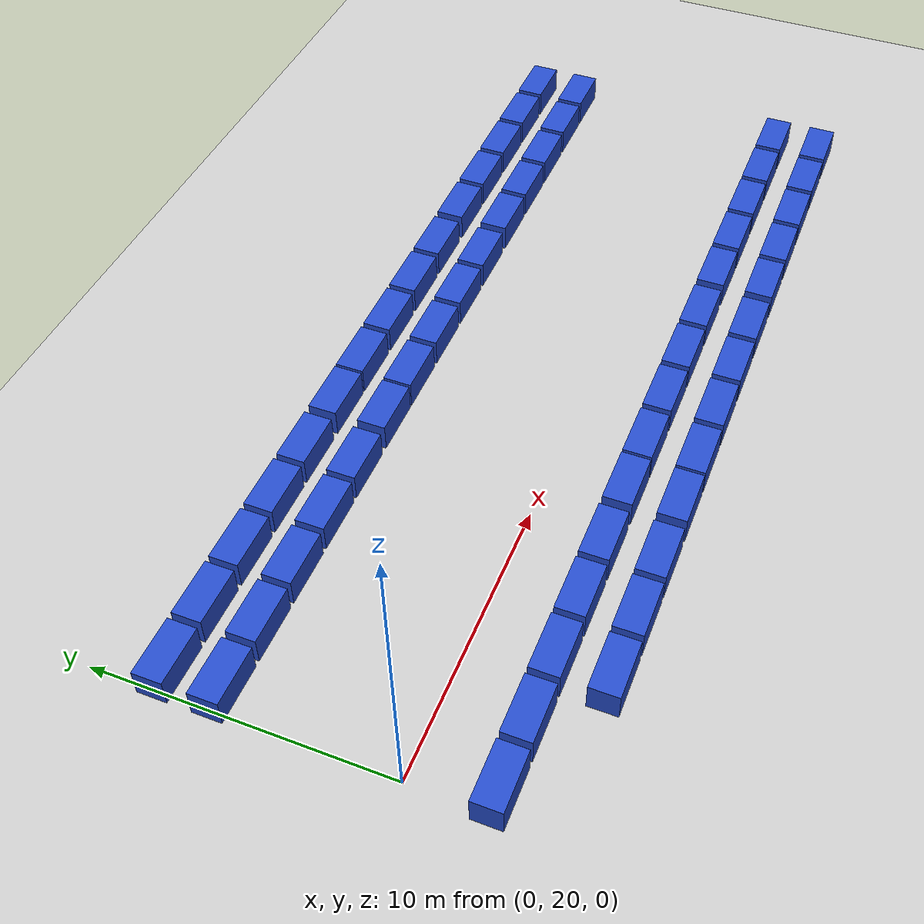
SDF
<sdf version="1.6">
 <world name="default">
  <model name="ground_plane">
   <static>1</static>
   <link name="link">
    <collision name="collision">
     <geometry><plane><normal>0 0 1</normal><size>100 100</size></plane></geometry>
     <surface><friction><ode><mu>100</mu><mu2>50</mu2></ode></friction></surface>
    </collision>
    <visual name="visual">
     <cast_shadows>0</cast_shadows>
     <geometry><plane><normal>0 0 1</normal><size>100 100</size></plane></geometry>
     <material>
      <script><uri>file://media/materials/scripts/gazebo.material</uri><name>Gazebo/Grey</name></script>
     </material>
    </visual>
   </link>
  </model>
  <model name="box14">
   <link name="blue_box">
    <inertial>
     <pose>2 0 0 0 -0 0</pose>
     <mass>1</mass>
     <inertia><ixx>0.17</ixx><ixy>0</ixy><ixz>0</ixz><iyy>0.42</iyy><iyz>0</iyz><izz>0.42</izz></inertia>
    </inertial>
    <collision name="blue_box_collision">
     <pose>2 0 1 0 -0 0</pose>
     <geometry><box><size>2 1 1</size></box></geometry>
    </collision>
    <visual name="blue_box_visual">
     <pose>2 0 1 0 -0 0</pose>
     <geometry><box><size>2 1 1</size></box></geometry>
     <material>
      <script><name>Gazebo/Blue</name><uri>file://media/materials/scripts/gazebo.material</uri></script>
     </material>
    </visual>
    <gravity>0</gravity>
   </link>
   <pose>-1.20001 27.7996 -0.500378 -0.000755 0 0</pose>
  </model>
  <model name="box15">
   <link name="blue_box">
    <inertial>
     <pose>2 0 0 0 -0 0</pose>
     <mass>1</mass>
     <inertia><ixx>0.17</ixx><ixy>0</ixy><ixz>0</ixz><iyy>0.42</iyy><iyz>0</iyz><izz>0.42</izz></inertia>
    </inertial>
    <collision name="blue_box_collision">
     <pose>2 0 1 0 -0 0</pose>
     <geometry><box><size>2 1 1</size></box></geometry>
    </collision>
    <visual name="blue_box_visual">
     <pose>2 0 1 0 -0 0</pose>
     <geometry><box><size>2 1 1</size></box></geometry>
     <material>
      <script><name>Gazebo/Blue</name><uri>file://media/materials/scripts/gazebo.material</uri></script>
     </material>
    </visual>
    <gravity>0</gravity>
   </link>
   <pose>1.00001 27.7996 -0.500378 -0.000755 0 0</pose>
  </model>
  <model name="box16">
   <link name="blue_box">
    <inertial>
     <pose>2 0 0 0 -0 0</pose>
     <mass>1</mass>
     <inertia><ixx>0.17</ixx><ixy>0</ixy><ixz>0</ixz><iyy>0.42</iyy><iyz>0</iyz><izz>0.42</izz></inertia>
    </inertial>
    <collision name="blue_box_collision">
     <pose>2 0 1 0 -0 0</pose>
     <geometry><box><size>2 1 1</size></box></geometry>
    </collision>
    <visual name="blue_box_visual">
     <pose>2 0 1 0 -0 0</pose>
     <geometry><box><size>2 1 1</size></box></geometry>
     <material>
      <script><name>Gazebo/Blue</name><uri>file://media/materials/scripts/gazebo.material</uri></script>
     </material>
    </visual>
    <gravity>0</gravity>
   </link>
   <pose>3.19999 27.7996 -0.500378 -0.000755 0 0</pose>
  </model>
  <model name="box17">
   <link name="blue_box">
    <inertial>
     <pose>2 0 0 0 -0 0</pose>
     <mass>1</mass>
     <inertia><ixx>0.17</ixx><ixy>0</ixy><ixz>0</ixz><iyy>0.42</iyy><iyz>0</iyz><izz>0.42</izz></inertia>
    </inertial>
    <collision name="blue_box_collision">
     <pose>2 0 1 0 -0 0</pose>
     <geometry><box><size>2 1 1</size></box></geometry>
    </collision>
    <visual name="blue_box_visual">
     <pose>2 0 1 0 -0 0</pose>
     <geometry><box><size>2 1 1</size></box></geometry>
     <material>
      <script><name>Gazebo/Blue</name><uri>file://media/materials/scripts/gazebo.material</uri></script>
     </material>
    </visual>
    <gravity>0</gravity>
   </link>
   <pose>5.40001 27.7996 -0.500378 -0.000755 0 0</pose>
  </model>
  <model name="box18">
   <link name="blue_box">
    <inertial>
     <pose>2 0 0 0 -0 0</pose>
     <mass>1</mass>
     <inertia><ixx>0.17</ixx><ixy>0</ixy><ixz>0</ixz><iyy>0.42</iyy><iyz>0</iyz><izz>0.42</izz></inertia>
    </inertial>
    <collision name="blue_box_collision">
     <pose>2 0 1 0 -0 0</pose>
     <geometry><box><size>2 1 1</size></box></geometry>
    </collision>
    <visual name="blue_box_visual">
     <pose>2 0 1 0 -0 0</pose>
     <geometry><box><size>2 1 1</size></box></geometry>
     <material>
      <script><name>Gazebo/Blue</name><uri>file://media/materials/scripts/gazebo.material</uri></script>
     </material>
    </visual>
    <gravity>0</gravity>
   </link>
   <pose>7.59999 27.7996 -0.500378 -0.000755 0 0</pose>
  </model>
  <model name="box19">
   <link name="blue_box">
    <inertial>
     <pose>2 0 0 0 -0 0</pose>
     <mass>1</mass>
     <inertia><ixx>0.17</ixx><ixy>0</ixy><ixz>0</ixz><iyy>0.42</iyy><iyz>0</iyz><izz>0.42</izz></inertia>
    </inertial>
    <collision name="blue_box_collision">
     <pose>2 0 1 0 -0 0</pose>
     <geometry><box><size>2 1 1</size></box></geometry>
    </collision>
    <visual name="blue_box_visual">
     <pose>2 0 1 0 -0 0</pose>
     <geometry><box><size>2 1 1</size></box></geometry>
     <material>
      <script><name>Gazebo/Blue</name><uri>file://media/materials/scripts/gazebo.material</uri></script>
     </material>
    </visual>
    <gravity>0</gravity>
   </link>
   <pose>9.89999 27.7996 -0.500378 -0.000755 0 0</pose>
  </model>
  <model name="box20">
   <link name="blue_box">
    <inertial>
     <pose>2 0 0 0 -0 0</pose>
     <mass>1</mass>
     <inertia><ixx>0.17</ixx><ixy>0</ixy><ixz>0</ixz><iyy>0.42</iyy><iyz>0</iyz><izz>0.42</izz></inertia>
    </inertial>
    <collision name="blue_box_collision">
     <pose>2 0 1 0 -0 0</pose>
     <geometry><box><size>2 1 1</size></box></geometry>
    </collision>
    <visual name="blue_box_visual">
     <pose>2 0 1 0 -0 0</pose>
     <geometry><box><size>2 1 1</size></box></geometry>
     <material>
      <script><name>Gazebo/Blue</name><uri>file://media/materials/scripts/gazebo.material</uri></script>
     </material>
    </visual>
    <gravity>0</gravity>
   </link>
   <pose>12 27.7996 -0.500378 -0.000755 0 0</pose>
  </model>
  <model name="box21">
   <link name="blue_box">
    <inertial>
     <pose>2 0 0 0 -0 0</pose>
     <mass>1</mass>
     <inertia><ixx>0.17</ixx><ixy>0</ixy><ixz>0</ixz><iyy>0.42</iyy><iyz>0</iyz><izz>0.42</izz></inertia>
    </inertial>
    <collision name="blue_box_collision">
     <pose>2 0 1 0 -0 0</pose>
     <geometry><box><size>2 1 1</size></box></geometry>
    </collision>
    <visual name="blue_box_visual">
     <pose>2 0 1 0 -0 0</pose>
     <geometry><box><size>2 1 1</size></box></geometry>
     <material>
      <script><name>Gazebo/Blue</name><uri>file://media/materials/scripts/gazebo.material</uri></script>
     </material>
    </visual>
    <gravity>0</gravity>
   </link>
   <pose>14.2 27.8004 -0.500378 0.000755 -0 0</pose>
  </model>
  <model name="box22">
   <link name="blue_box">
    <inertial>
     <pose>2 0 0 0 -0 0</pose>
     <mass>1</mass>
     <inertia><ixx>0.17</ixx><ixy>0</ixy><ixz>0</ixz><iyy>0.42</iyy><iyz>0</iyz><izz>0.42</izz></inertia>
    </inertial>
    <collision name="blue_box_collision">
     <pose>2 0 1 0 -0 0</pose>
     <geometry><box><size>2 1 1</size></box></geometry>
    </collision>
    <visual name="blue_box_visual">
     <pose>2 0 1 0 -0 0</pose>
     <geometry><box><size>2 1 1</size></box></geometry>
     <material>
      <script><name>Gazebo/Blue</name><uri>file://media/materials/scripts/gazebo.material</uri></script>
     </material>
    </visual>
    <gravity>0</gravity>
   </link>
   <pose>16.4 27.7996 -0.500378 -0.000755 0 0</pose>
  </model>
  <model name="box23">
   <link name="blue_box">
    <inertial>
     <pose>2 0 0 0 -0 0</pose>
     <mass>1</mass>
     <inertia><ixx>0.17</ixx><ixy>0</ixy><ixz>0</ixz><iyy>0.42</iyy><iyz>0</iyz><izz>0.42</izz></inertia>
    </inertial>
    <collision name="blue_box_collision">
     <pose>2 0 1 0 -0 0</pose>
     <geometry><box><size>2 1 1</size></box></geometry>
    </collision>
    <visual name="blue_box_visual">
     <pose>2 0 1 0 -0 0</pose>
     <geometry><box><size>2 1 1</size></box></geometry>
     <material>
      <script><name>Gazebo/Blue</name><uri>file://media/materials/scripts/gazebo.material</uri></script>
     </material>
    </visual>
    <gravity>0</gravity>
   </link>
   <pose>18.6 27.7996 -0.500378 -0.000755 0 0</pose>
  </model>
  <model name="box24">
   <link name="blue_box">
    <inertial>
     <pose>2 0 0 0 -0 0</pose>
     <mass>1</mass>
     <inertia><ixx>0.17</ixx><ixy>0</ixy><ixz>0</ixz><iyy>0.42</iyy><iyz>0</iyz><izz>0.42</izz></inertia>
    </inertial>
    <collision name="blue_box_collision">
     <pose>2 0 1 0 -0 0</pose>
     <geometry><box><size>2 1 1</size></box></geometry>
    </collision>
    <visual name="blue_box_visual">
     <pose>2 0 1 0 -0 0</pose>
     <geometry><box><size>2 1 1</size></box></geometry>
     <material>
      <script><name>Gazebo/Blue</name><uri>file://media/materials/scripts/gazebo.material</uri></script>
     </material>
    </visual>
    <gravity>0</gravity>
   </link>
   <pose>20.9 27.7996 -0.500378 -0.000755 0 0</pose>
  </model>
  <model name="box25">
   <link name="blue_box">
    <inertial>
     <pose>2 0 0 0 -0 0</pose>
     <mass>1</mass>
     <inertia><ixx>0.17</ixx><ixy>0</ixy><ixz>0</ixz><iyy>0.42</iyy><iyz>0</iyz><izz>0.42</izz></inertia>
    </inertial>
    <collision name="blue_box_collision">
     <pose>2 0 1 0 -0 0</pose>
     <geometry><box><size>2 1 1</size></box></geometry>
    </collision>
    <visual name="blue_box_visual">
     <pose>2 0 1 0 -0 0</pose>
     <geometry><box><size>2 1 1</size></box></geometry>
     <material>
      <script><name>Gazebo/Blue</name><uri>file://media/materials/scripts/gazebo.material</uri></script>
     </material>
    </visual>
    <gravity>0</gravity>
   </link>
   <pose>23.1 27.7996 -0.500378 -0.000755 0 0</pose>
  </model>
  <model name="box26">
   <link name="blue_box">
    <inertial>
     <pose>2 0 0 0 -0 0</pose>
     <mass>1</mass>
     <inertia><ixx>0.17</ixx><ixy>0</ixy><ixz>0</ixz><iyy>0.42</iyy><iyz>0</iyz><izz>0.42</izz></inertia>
    </inertial>
    <collision name="blue_box_collision">
     <pose>2 0 1 0 -0 0</pose>
     <geometry><box><size>2 1 1</size></box></geometry>
    </collision>
    <visual name="blue_box_visual">
     <pose>2 0 1 0 -0 0</pose>
     <geometry><box><size>2 1 1</size></box></geometry>
     <material>
      <script><name>Gazebo/Blue</name><uri>file://media/materials/scripts/gazebo.material</uri></script>
     </material>
    </visual>
    <gravity>0</gravity>
   </link>
   <pose>25.3 27.7996 -0.500378 -0.000755 0 0</pose>
  </model>
  <model name="box27">
   <link name="blue_box">
    <inertial>
     <pose>2 0 0 0 -0 0</pose>
     <mass>1</mass>
     <inertia><ixx>0.17</ixx><ixy>0</ixy><ixz>0</ixz><iyy>0.42</iyy><iyz>0</iyz><izz>0.42</izz></inertia>
    </inertial>
    <collision name="blue_box_collision">
     <pose>2 0 1 0 -0 0</pose>
     <geometry><box><size>2 1 1</size></box></geometry>
    </collision>
    <visual name="blue_box_visual">
     <pose>2 0 1 0 -0 0</pose>
     <geometry><box><size>2 1 1</size></box></geometry>
     <material>
      <script><name>Gazebo/Blue</name><uri>file://media/materials/scripts/gazebo.material</uri></script>
     </material>
    </visual>
    <gravity>0</gravity>
   </link>
   <pose>27.5 27.7996 -0.500378 -0.000755 0 0</pose>
  </model>
  <model name="box28">
   <link name="blue_box">
    <inertial>
     <pose>2 0 0 0 -0 0</pose>
     <mass>1</mass>
     <inertia><ixx>0.17</ixx><ixy>0</ixy><ixz>0</ixz><iyy>0.42</iyy><iyz>0</iyz><izz>0.42</izz></inertia>
    </inertial>
    <collision name="blue_box_collision">
     <pose>2 0 1 0 -0 0</pose>
     <geometry><box><size>2 1 1</size></box></geometry>
    </collision>
    <visual name="blue_box_visual">
     <pose>2 0 1 0 -0 0</pose>
     <geometry><box><size>2 1 1</size></box></geometry>
     <material>
      <script><name>Gazebo/Blue</name><uri>file://media/materials/scripts/gazebo.material</uri></script>
     </material>
    </visual>
    <gravity>0</gravity>
   </link>
   <pose>29.7 27.7996 -0.500378 -0.000755 0 0</pose>
  </model>
  <model name="box43">
   <link name="blue_box">
    <inertial>
     <pose>2 0 0 0 -0 0</pose>
     <mass>1</mass>
     <inertia><ixx>0.17</ixx><ixy>0</ixy><ixz>0</ixz><iyy>0.42</iyy><iyz>0</iyz><izz>0.42</izz></inertia>
    </inertial>
    <collision name="blue_box_collision">
     <pose>2 0 1 0 -0 0</pose>
     <geometry><box><size>2 1 1</size></box></geometry>
    </collision>
    <visual name="blue_box_visual">
     <pose>2 0 1 0 -0 0</pose>
     <geometry><box><size>2 1 1</size></box></geometry>
     <material>
      <script><name>Gazebo/Blue</name><uri>file://media/materials/scripts/gazebo.material</uri></script>
     </material>
    </visual>
    <gravity>0</gravity>
   </link>
   <pose>-1.20001 26.0004 -0.500378 0.000755 -0 0</pose>
  </model>
  <model name="box44">
   <link name="blue_box">
    <inertial>
     <pose>2 0 0 0 -0 0</pose>
     <mass>1</mass>
     <inertia><ixx>0.17</ixx><ixy>0</ixy><ixz>0</ixz><iyy>0.42</iyy><iyz>0</iyz><izz>0.42</izz></inertia>
    </inertial>
    <collision name="blue_box_collision">
     <pose>2 0 1 0 -0 0</pose>
     <geometry><box><size>2 1 1</size></box></geometry>
    </collision>
    <visual name="blue_box_visual">
     <pose>2 0 1 0 -0 0</pose>
     <geometry><box><size>2 1 1</size></box></geometry>
     <material>
      <script><name>Gazebo/Blue</name><uri>file://media/materials/scripts/gazebo.material</uri></script>
     </material>
    </visual>
    <gravity>0</gravity>
   </link>
   <pose>0.999994 25.9996 -0.500378 -0.000755 0 0</pose>
  </model>
  <model name="box45">
   <link name="blue_box">
    <inertial>
     <pose>2 0 0 0 -0 0</pose>
     <mass>1</mass>
     <inertia><ixx>0.17</ixx><ixy>0</ixy><ixz>0</ixz><iyy>0.42</iyy><iyz>0</iyz><izz>0.42</izz></inertia>
    </inertial>
    <collision name="blue_box_collision">
     <pose>2 0 1 0 -0 0</pose>
     <geometry><box><size>2 1 1</size></box></geometry>
    </collision>
    <visual name="blue_box_visual">
     <pose>2 0 1 0 -0 0</pose>
     <geometry><box><size>2 1 1</size></box></geometry>
     <material>
      <script><name>Gazebo/Blue</name><uri>file://media/materials/scripts/gazebo.material</uri></script>
     </material>
    </visual>
    <gravity>0</gravity>
   </link>
   <pose>3.20001 25.9996 -0.500378 -0.000755 0 0</pose>
  </model>
  <model name="box46">
   <link name="blue_box">
    <inertial>
     <pose>2 0 0 0 -0 0</pose>
     <mass>1</mass>
     <inertia><ixx>0.17</ixx><ixy>0</ixy><ixz>0</ixz><iyy>0.42</iyy><iyz>0</iyz><izz>0.42</izz></inertia>
    </inertial>
    <collision name="blue_box_collision">
     <pose>2 0 1 0 -0 0</pose>
     <geometry><box><size>2 1 1</size></box></geometry>
    </collision>
    <visual name="blue_box_visual">
     <pose>2 0 1 0 -0 0</pose>
     <geometry><box><size>2 1 1</size></box></geometry>
     <material>
      <script><name>Gazebo/Blue</name><uri>file://media/materials/scripts/gazebo.material</uri></script>
     </material>
    </visual>
    <gravity>0</gravity>
   </link>
   <pose>5.40001 26.0004 -0.500378 0.000755 -0 0</pose>
  </model>
  <model name="box47">
   <link name="blue_box">
    <inertial>
     <pose>2 0 0 0 -0 0</pose>
     <mass>1</mass>
     <inertia><ixx>0.17</ixx><ixy>0</ixy><ixz>0</ixz><iyy>0.42</iyy><iyz>0</iyz><izz>0.42</izz></inertia>
    </inertial>
    <collision name="blue_box_collision">
     <pose>2 0 1 0 -0 0</pose>
     <geometry><box><size>2 1 1</size></box></geometry>
    </collision>
    <visual name="blue_box_visual">
     <pose>2 0 1 0 -0 0</pose>
     <geometry><box><size>2 1 1</size></box></geometry>
     <material>
      <script><name>Gazebo/Blue</name><uri>file://media/materials/scripts/gazebo.material</uri></script>
     </material>
    </visual>
    <gravity>0</gravity>
   </link>
   <pose>7.59999 26.0004 -0.500378 0.000755 -0 0</pose>
  </model>
  <model name="box48">
   <link name="blue_box">
    <inertial>
     <pose>2 0 0 0 -0 0</pose>
     <mass>1</mass>
     <inertia><ixx>0.17</ixx><ixy>0</ixy><ixz>0</ixz><iyy>0.42</iyy><iyz>0</iyz><izz>0.42</izz></inertia>
    </inertial>
    <collision name="blue_box_collision">
     <pose>2 0 1 0 -0 0</pose>
     <geometry><box><size>2 1 1</size></box></geometry>
    </collision>
    <visual name="blue_box_visual">
     <pose>2 0 1 0 -0 0</pose>
     <geometry><box><size>2 1 1</size></box></geometry>
     <material>
      <script><name>Gazebo/Blue</name><uri>file://media/materials/scripts/gazebo.material</uri></script>
     </material>
    </visual>
    <gravity>0</gravity>
   </link>
   <pose>9.9 25.9996 -0.500378 -0.000755 0 0</pose>
  </model>
  <model name="box49">
   <link name="blue_box">
    <inertial>
     <pose>2 0 0 0 -0 0</pose>
     <mass>1</mass>
     <inertia><ixx>0.17</ixx><ixy>0</ixy><ixz>0</ixz><iyy>0.42</iyy><iyz>0</iyz><izz>0.42</izz></inertia>
    </inertial>
    <collision name="blue_box_collision">
     <pose>2 0 1 0 -0 0</pose>
     <geometry><box><size>2 1 1</size></box></geometry>
    </collision>
    <visual name="blue_box_visual">
     <pose>2 0 1 0 -0 0</pose>
     <geometry><box><size>2 1 1</size></box></geometry>
     <material>
      <script><name>Gazebo/Blue</name><uri>file://media/materials/scripts/gazebo.material</uri></script>
     </material>
    </visual>
    <gravity>0</gravity>
   </link>
   <pose>12 25.9996 -0.500378 -0.000755 0 0</pose>
  </model>
  <model name="box50">
   <link name="blue_box">
    <inertial>
     <pose>2 0 0 0 -0 0</pose>
     <mass>1</mass>
     <inertia><ixx>0.17</ixx><ixy>0</ixy><ixz>0</ixz><iyy>0.42</iyy><iyz>0</iyz><izz>0.42</izz></inertia>
    </inertial>
    <collision name="blue_box_collision">
     <pose>2 0 1 0 -0 0</pose>
     <geometry><box><size>2 1 1</size></box></geometry>
    </collision>
    <visual name="blue_box_visual">
     <pose>2 0 1 0 -0 0</pose>
     <geometry><box><size>2 1 1</size></box></geometry>
     <material>
      <script><name>Gazebo/Blue</name><uri>file://media/materials/scripts/gazebo.material</uri></script>
     </material>
    </visual>
    <gravity>0</gravity>
   </link>
   <pose>14.2 25.9996 -0.500378 -0.000755 0 0</pose>
  </model>
  <model name="box51">
   <link name="blue_box">
    <inertial>
     <pose>2 0 0 0 -0 0</pose>
     <mass>1</mass>
     <inertia><ixx>0.17</ixx><ixy>0</ixy><ixz>0</ixz><iyy>0.42</iyy><iyz>0</iyz><izz>0.42</izz></inertia>
    </inertial>
    <collision name="blue_box_collision">
     <pose>2 0 1 0 -0 0</pose>
     <geometry><box><size>2 1 1</size></box></geometry>
    </collision>
    <visual name="blue_box_visual">
     <pose>2 0 1 0 -0 0</pose>
     <geometry><box><size>2 1 1</size></box></geometry>
     <material>
      <script><name>Gazebo/Blue</name><uri>file://media/materials/scripts/gazebo.material</uri></script>
     </material>
    </visual>
    <gravity>0</gravity>
   </link>
   <pose>16.4 26.0004 -0.500378 0.000755 -0 0</pose>
  </model>
  <model name="box52">
   <link name="blue_box">
    <inertial>
     <pose>2 0 0 0 -0 0</pose>
     <mass>1</mass>
     <inertia><ixx>0.17</ixx><ixy>0</ixy><ixz>0</ixz><iyy>0.42</iyy><iyz>0</iyz><izz>0.42</izz></inertia>
    </inertial>
    <collision name="blue_box_collision">
     <pose>2 0 1 0 -0 0</pose>
     <geometry><box><size>2 1 1</size></box></geometry>
    </collision>
    <visual name="blue_box_visual">
     <pose>2 0 1 0 -0 0</pose>
     <geometry><box><size>2 1 1</size></box></geometry>
     <material>
      <script><name>Gazebo/Blue</name><uri>file://media/materials/scripts/gazebo.material</uri></script>
     </material>
    </visual>
    <gravity>0</gravity>
   </link>
   <pose>18.6 26.0004 -0.500378 0.000755 -0 0</pose>
  </model>
  <model name="box53">
   <link name="blue_box">
    <inertial>
     <pose>2 0 0 0 -0 0</pose>
     <mass>1</mass>
     <inertia><ixx>0.17</ixx><ixy>0</ixy><ixz>0</ixz><iyy>0.42</iyy><iyz>0</iyz><izz>0.42</izz></inertia>
    </inertial>
    <collision name="blue_box_collision">
     <pose>2 0 1 0 -0 0</pose>
     <geometry><box><size>2 1 1</size></box></geometry>
    </collision>
    <visual name="blue_box_visual">
     <pose>2 0 1 0 -0 0</pose>
     <geometry><box><size>2 1 1</size></box></geometry>
     <material>
      <script><name>Gazebo/Blue</name><uri>file://media/materials/scripts/gazebo.material</uri></script>
     </material>
    </visual>
    <gravity>0</gravity>
   </link>
   <pose>20.9 25.9996 -0.500378 -0.000755 0 0</pose>
  </model>
  <model name="box54">
   <link name="blue_box">
    <inertial>
     <pose>2 0 0 0 -0 0</pose>
     <mass>1</mass>
     <inertia><ixx>0.17</ixx><ixy>0</ixy><ixz>0</ixz><iyy>0.42</iyy><iyz>0</iyz><izz>0.42</izz></inertia>
    </inertial>
    <collision name="blue_box_collision">
     <pose>2 0 1 0 -0 0</pose>
     <geometry><box><size>2 1 1</size></box></geometry>
    </collision>
    <visual name="blue_box_visual">
     <pose>2 0 1 0 -0 0</pose>
     <geometry><box><size>2 1 1</size></box></geometry>
     <material>
      <script><name>Gazebo/Blue</name><uri>file://media/materials/scripts/gazebo.material</uri></script>
     </material>
    </visual>
    <gravity>0</gravity>
   </link>
   <pose>23.1 25.9996 -0.500378 -0.000755 0 0</pose>
  </model>
  <model name="box55">
   <link name="blue_box">
    <inertial>
     <pose>2 0 0 0 -0 0</pose>
     <mass>1</mass>
     <inertia><ixx>0.17</ixx><ixy>0</ixy><ixz>0</ixz><iyy>0.42</iyy><iyz>0</iyz><izz>0.42</izz></inertia>
    </inertial>
    <collision name="blue_box_collision">
     <pose>2 0 1 0 -0 0</pose>
     <geometry><box><size>2 1 1</size></box></geometry>
    </collision>
    <visual name="blue_box_visual">
     <pose>2 0 1 0 -0 0</pose>
     <geometry><box><size>2 1 1</size></box></geometry>
     <material>
      <script><name>Gazebo/Blue</name><uri>file://media/materials/scripts/gazebo.material</uri></script>
     </material>
    </visual>
    <gravity>0</gravity>
   </link>
   <pose>25.3 26.0004 -0.500378 0.000755 -0 0</pose>
  </model>
  <model name="box56">
   <link name="blue_box">
    <inertial>
     <pose>2 0 0 0 -0 0</pose>
     <mass>1</mass>
     <inertia><ixx>0.17</ixx><ixy>0</ixy><ixz>0</ixz><iyy>0.42</iyy><iyz>0</iyz><izz>0.42</izz></inertia>
    </inertial>
    <collision name="blue_box_collision">
     <pose>2 0 1 0 -0 0</pose>
     <geometry><box><size>2 1 1</size></box></geometry>
    </collision>
    <visual name="blue_box_visual">
     <pose>2 0 1 0 -0 0</pose>
     <geometry><box><size>2 1 1</size></box></geometry>
     <material>
      <script><name>Gazebo/Blue</name><uri>file://media/materials/scripts/gazebo.material</uri></script>
     </material>
    </visual>
    <gravity>0</gravity>
   </link>
   <pose>27.5 26.0004 -0.500378 0.000755 -0 0</pose>
  </model>
  <model name="box57">
   <link name="blue_box">
    <inertial>
     <pose>2 0 0 0 -0 0</pose>
     <mass>1</mass>
     <inertia><ixx>0.17</ixx><ixy>0</ixy><ixz>0</ixz><iyy>0.42</iyy><iyz>0</iyz><izz>0.42</izz></inertia>
    </inertial>
    <collision name="blue_box_collision">
     <pose>2 0 1 0 -0 0</pose>
     <geometry><box><size>2 1 1</size></box></geometry>
    </collision>
    <visual name="blue_box_visual">
     <pose>2 0 1 0 -0 0</pose>
     <geometry><box><size>2 1 1</size></box></geometry>
     <material>
      <script><name>Gazebo/Blue</name><uri>file://media/materials/scripts/gazebo.material</uri></script>
     </material>
    </visual>
    <gravity>0</gravity>
   </link>
   <pose>29.7 26.0004 -0.500378 0.000755 -0 0</pose>
  </model>
  <model name="box72">
   <link name="blue_box">
    <inertial>
     <pose>2 0 0 0 -0 0</pose>
     <mass>1</mass>
     <inertia><ixx>0.17</ixx><ixy>0</ixy><ixz>0</ixz><iyy>0.42</iyy><iyz>0</iyz><izz>0.42</izz></inertia>
    </inertial>
    <collision name="blue_box_collision">
     <pose>2 0 1 0 -0 0</pose>
     <geometry><box><size>2 1 1</size></box></geometry>
    </collision>
    <visual name="blue_box_visual">
     <pose>2 0 1 0 -0 0</pose>
     <geometry><box><size>2 1 1</size></box></geometry>
     <material>
      <script><name>Gazebo/Blue</name><uri>file://media/materials/scripts/gazebo.material</uri></script>
     </material>
    </visual>
    <gravity>0</gravity>
   </link>
   <pose>-1.3 17.4004 -0.500378 0.000755 -0 0</pose>
  </model>
  <model name="box73">
   <link name="blue_box">
    <inertial>
     <pose>2 0 0 0 -0 0</pose>
     <mass>1</mass>
     <inertia><ixx>0.17</ixx><ixy>0</ixy><ixz>0</ixz><iyy>0.42</iyy><iyz>0</iyz><izz>0.42</izz></inertia>
    </inertial>
    <collision name="blue_box_collision">
     <pose>2 0 1 0 -0 0</pose>
     <geometry><box><size>2 1 1</size></box></geometry>
    </collision>
    <visual name="blue_box_visual">
     <pose>2 0 1 0 -0 0</pose>
     <geometry><box><size>2 1 1</size></box></geometry>
     <material>
      <script><name>Gazebo/Blue</name><uri>file://media/materials/scripts/gazebo.material</uri></script>
     </material>
    </visual>
    <gravity>0</gravity>
   </link>
   <pose>0.900005 17.3996 -0.500378 -0.000755 0 0</pose>
  </model>
  <model name="box74">
   <link name="blue_box">
    <inertial>
     <pose>2 0 0 0 -0 0</pose>
     <mass>1</mass>
     <inertia><ixx>0.17</ixx><ixy>0</ixy><ixz>0</ixz><iyy>0.42</iyy><iyz>0</iyz><izz>0.42</izz></inertia>
    </inertial>
    <collision name="blue_box_collision">
     <pose>2 0 1 0 -0 0</pose>
     <geometry><box><size>2 1 1</size></box></geometry>
    </collision>
    <visual name="blue_box_visual">
     <pose>2 0 1 0 -0 0</pose>
     <geometry><box><size>2 1 1</size></box></geometry>
     <material>
      <script><name>Gazebo/Blue</name><uri>file://media/materials/scripts/gazebo.material</uri></script>
     </material>
    </visual>
    <gravity>0</gravity>
   </link>
   <pose>3.1 17.3996 -0.500378 -0.000755 0 0</pose>
  </model>
  <model name="box75">
   <link name="blue_box">
    <inertial>
     <pose>2 0 0 0 -0 0</pose>
     <mass>1</mass>
     <inertia><ixx>0.17</ixx><ixy>0</ixy><ixz>0</ixz><iyy>0.42</iyy><iyz>0</iyz><izz>0.42</izz></inertia>
    </inertial>
    <collision name="blue_box_collision">
     <pose>2 0 1 0 -0 0</pose>
     <geometry><box><size>2 1 1</size></box></geometry>
    </collision>
    <visual name="blue_box_visual">
     <pose>2 0 1 0 -0 0</pose>
     <geometry><box><size>2 1 1</size></box></geometry>
     <material>
      <script><name>Gazebo/Blue</name><uri>file://media/materials/scripts/gazebo.material</uri></script>
     </material>
    </visual>
    <gravity>0</gravity>
   </link>
   <pose>5.3 17.4004 -0.500378 0.000755 -0 0</pose>
  </model>
  <model name="box76">
   <link name="blue_box">
    <inertial>
     <pose>2 0 0 0 -0 0</pose>
     <mass>1</mass>
     <inertia><ixx>0.17</ixx><ixy>0</ixy><ixz>0</ixz><iyy>0.42</iyy><iyz>0</iyz><izz>0.42</izz></inertia>
    </inertial>
    <collision name="blue_box_collision">
     <pose>2 0 1 0 -0 0</pose>
     <geometry><box><size>2 1 1</size></box></geometry>
    </collision>
    <visual name="blue_box_visual">
     <pose>2 0 1 0 -0 0</pose>
     <geometry><box><size>2 1 1</size></box></geometry>
     <material>
      <script><name>Gazebo/Blue</name><uri>file://media/materials/scripts/gazebo.material</uri></script>
     </material>
    </visual>
    <gravity>0</gravity>
   </link>
   <pose>7.5 17.4004 -0.500378 0.000755 -0 0</pose>
  </model>
  <model name="box77">
   <link name="blue_box">
    <inertial>
     <pose>2 0 0 0 -0 0</pose>
     <mass>1</mass>
     <inertia><ixx>0.17</ixx><ixy>0</ixy><ixz>0</ixz><iyy>0.42</iyy><iyz>0</iyz><izz>0.42</izz></inertia>
    </inertial>
    <collision name="blue_box_collision">
     <pose>2 0 1 0 -0 0</pose>
     <geometry><box><size>2 1 1</size></box></geometry>
    </collision>
    <visual name="blue_box_visual">
     <pose>2 0 1 0 -0 0</pose>
     <geometry><box><size>2 1 1</size></box></geometry>
     <material>
      <script><name>Gazebo/Blue</name><uri>file://media/materials/scripts/gazebo.material</uri></script>
     </material>
    </visual>
    <gravity>0</gravity>
   </link>
   <pose>9.80001 17.4004 -0.500378 0.000755 -0 0</pose>
  </model>
  <model name="box78">
   <link name="blue_box">
    <inertial>
     <pose>2 0 0 0 -0 0</pose>
     <mass>1</mass>
     <inertia><ixx>0.17</ixx><ixy>0</ixy><ixz>0</ixz><iyy>0.42</iyy><iyz>0</iyz><izz>0.42</izz></inertia>
    </inertial>
    <collision name="blue_box_collision">
     <pose>2 0 1 0 -0 0</pose>
     <geometry><box><size>2 1 1</size></box></geometry>
    </collision>
    <visual name="blue_box_visual">
     <pose>2 0 1 0 -0 0</pose>
     <geometry><box><size>2 1 1</size></box></geometry>
     <material>
      <script><name>Gazebo/Blue</name><uri>file://media/materials/scripts/gazebo.material</uri></script>
     </material>
    </visual>
    <gravity>0</gravity>
   </link>
   <pose>11.9 17.3996 -0.500378 -0.000755 0 0</pose>
  </model>
  <model name="box79">
   <link name="blue_box">
    <inertial>
     <pose>2 0 0 0 -0 0</pose>
     <mass>1</mass>
     <inertia><ixx>0.17</ixx><ixy>0</ixy><ixz>0</ixz><iyy>0.42</iyy><iyz>0</iyz><izz>0.42</izz></inertia>
    </inertial>
    <collision name="blue_box_collision">
     <pose>2 0 1 0 -0 0</pose>
     <geometry><box><size>2 1 1</size></box></geometry>
    </collision>
    <visual name="blue_box_visual">
     <pose>2 0 1 0 -0 0</pose>
     <geometry><box><size>2 1 1</size></box></geometry>
     <material>
      <script><name>Gazebo/Blue</name><uri>file://media/materials/scripts/gazebo.material</uri></script>
     </material>
    </visual>
    <gravity>0</gravity>
   </link>
   <pose>14.1 17.3996 -0.500378 -0.000755 0 0</pose>
  </model>
  <model name="box80">
   <link name="blue_box">
    <inertial>
     <pose>2 0 0 0 -0 0</pose>
     <mass>1</mass>
     <inertia><ixx>0.17</ixx><ixy>0</ixy><ixz>0</ixz><iyy>0.42</iyy><iyz>0</iyz><izz>0.42</izz></inertia>
    </inertial>
    <collision name="blue_box_collision">
     <pose>2 0 1 0 -0 0</pose>
     <geometry><box><size>2 1 1</size></box></geometry>
    </collision>
    <visual name="blue_box_visual">
     <pose>2 0 1 0 -0 0</pose>
     <geometry><box><size>2 1 1</size></box></geometry>
     <material>
      <script><name>Gazebo/Blue</name><uri>file://media/materials/scripts/gazebo.material</uri></script>
     </material>
    </visual>
    <gravity>0</gravity>
   </link>
   <pose>16.3 17.3996 -0.500378 -0.000755 0 0</pose>
  </model>
  <model name="box81">
   <link name="blue_box">
    <inertial>
     <pose>2 0 0 0 -0 0</pose>
     <mass>1</mass>
     <inertia><ixx>0.17</ixx><ixy>0</ixy><ixz>0</ixz><iyy>0.42</iyy><iyz>0</iyz><izz>0.42</izz></inertia>
    </inertial>
    <collision name="blue_box_collision">
     <pose>2 0 1 0 -0 0</pose>
     <geometry><box><size>2 1 1</size></box></geometry>
    </collision>
    <visual name="blue_box_visual">
     <pose>2 0 1 0 -0 0</pose>
     <geometry><box><size>2 1 1</size></box></geometry>
     <material>
      <script><name>Gazebo/Blue</name><uri>file://media/materials/scripts/gazebo.material</uri></script>
     </material>
    </visual>
    <gravity>0</gravity>
   </link>
   <pose>18.5 17.3996 -0.500378 -0.000755 0 0</pose>
  </model>
  <model name="box82">
   <link name="blue_box">
    <inertial>
     <pose>2 0 0 0 -0 0</pose>
     <mass>1</mass>
     <inertia><ixx>0.17</ixx><ixy>0</ixy><ixz>0</ixz><iyy>0.42</iyy><iyz>0</iyz><izz>0.42</izz></inertia>
    </inertial>
    <collision name="blue_box_collision">
     <pose>2 0 1 0 -0 0</pose>
     <geometry><box><size>2 1 1</size></box></geometry>
    </collision>
    <visual name="blue_box_visual">
     <pose>2 0 1 0 -0 0</pose>
     <geometry><box><size>2 1 1</size></box></geometry>
     <material>
      <script><name>Gazebo/Blue</name><uri>file://media/materials/scripts/gazebo.material</uri></script>
     </material>
    </visual>
    <gravity>0</gravity>
   </link>
   <pose>20.8 17.4004 -0.500378 0.000755 -0 0</pose>
  </model>
  <model name="box83">
   <link name="blue_box">
    <inertial>
     <pose>2 0 0 0 -0 0</pose>
     <mass>1</mass>
     <inertia><ixx>0.17</ixx><ixy>0</ixy><ixz>0</ixz><iyy>0.42</iyy><iyz>0</iyz><izz>0.42</izz></inertia>
    </inertial>
    <collision name="blue_box_collision">
     <pose>2 0 1 0 -0 0</pose>
     <geometry><box><size>2 1 1</size></box></geometry>
    </collision>
    <visual name="blue_box_visual">
     <pose>2 0 1 0 -0 0</pose>
     <geometry><box><size>2 1 1</size></box></geometry>
     <material>
      <script><name>Gazebo/Blue</name><uri>file://media/materials/scripts/gazebo.material</uri></script>
     </material>
    </visual>
    <gravity>0</gravity>
   </link>
   <pose>23 17.4004 -0.500378 0.000755 -0 0</pose>
  </model>
  <model name="box84">
   <link name="blue_box">
    <inertial>
     <pose>2 0 0 0 -0 0</pose>
     <mass>1</mass>
     <inertia><ixx>0.17</ixx><ixy>0</ixy><ixz>0</ixz><iyy>0.42</iyy><iyz>0</iyz><izz>0.42</izz></inertia>
    </inertial>
    <collision name="blue_box_collision">
     <pose>2 0 1 0 -0 0</pose>
     <geometry><box><size>2 1 1</size></box></geometry>
    </collision>
    <visual name="blue_box_visual">
     <pose>2 0 1 0 -0 0</pose>
     <geometry><box><size>2 1 1</size></box></geometry>
     <material>
      <script><name>Gazebo/Blue</name><uri>file://media/materials/scripts/gazebo.material</uri></script>
     </material>
    </visual>
    <gravity>0</gravity>
   </link>
   <pose>25.2 17.4004 -0.500378 0.000755 -0 0</pose>
  </model>
  <model name="box85">
   <link name="blue_box">
    <inertial>
     <pose>2 0 0 0 -0 0</pose>
     <mass>1</mass>
     <inertia><ixx>0.17</ixx><ixy>0</ixy><ixz>0</ixz><iyy>0.42</iyy><iyz>0</iyz><izz>0.42</izz></inertia>
    </inertial>
    <collision name="blue_box_collision">
     <pose>2 0 1 0 -0 0</pose>
     <geometry><box><size>2 1 1</size></box></geometry>
    </collision>
    <visual name="blue_box_visual">
     <pose>2 0 1 0 -0 0</pose>
     <geometry><box><size>2 1 1</size></box></geometry>
     <material>
      <script><name>Gazebo/Blue</name><uri>file://media/materials/scripts/gazebo.material</uri></script>
     </material>
    </visual>
    <gravity>0</gravity>
   </link>
   <pose>27.4 17.3996 -0.500378 -0.000755 0 0</pose>
  </model>
  <model name="box86">
   <link name="blue_box">
    <inertial>
     <pose>2 0 0 0 -0 0</pose>
     <mass>1</mass>
     <inertia><ixx>0.17</ixx><ixy>0</ixy><ixz>0</ixz><iyy>0.42</iyy><iyz>0</iyz><izz>0.42</izz></inertia>
    </inertial>
    <collision name="blue_box_collision">
     <pose>2 0 1 0 -0 0</pose>
     <geometry><box><size>2 1 1</size></box></geometry>
    </collision>
    <visual name="blue_box_visual">
     <pose>2 0 1 0 -0 0</pose>
     <geometry><box><size>2 1 1</size></box></geometry>
     <material>
      <script><name>Gazebo/Blue</name><uri>file://media/materials/scripts/gazebo.material</uri></script>
     </material>
    </visual>
    <gravity>0</gravity>
   </link>
   <pose>29.6 17.3996 -0.500378 -0.000755 0 0</pose>
  </model>
  <model name="box103">
   <link name="blue_box">
    <inertial>
     <pose>2 0 0 0 -0 0</pose>
     <mass>1</mass>
     <inertia><ixx>0.17</ixx><ixy>0</ixy><ixz>0</ixz><iyy>0.42</iyy><iyz>0</iyz><izz>0.42</izz></inertia>
    </inertial>
    <collision name="blue_box_collision">
     <pose>2 0 1 0 -0 0</pose>
     <geometry><box><size>2 1 1</size></box></geometry>
    </collision>
    <visual name="blue_box_visual">
     <pose>2 0 1 0 -0 0</pose>
     <geometry><box><size>2 1 1</size></box></geometry>
     <material>
      <script><name>Gazebo/Blue</name><uri>file://media/materials/scripts/gazebo.material</uri></script>
     </material>
    </visual>
    <gravity>0</gravity>
   </link>
   <pose>3.1 15.6004 -0.500378 0.000755 -0 0</pose>
  </model>
  <model name="box104">
   <link name="blue_box">
    <inertial>
     <pose>2 0 0 0 -0 0</pose>
     <mass>1</mass>
     <inertia><ixx>0.17</ixx><ixy>0</ixy><ixz>0</ixz><iyy>0.42</iyy><iyz>0</iyz><izz>0.42</izz></inertia>
    </inertial>
    <collision name="blue_box_collision">
     <pose>2 0 1 0 -0 0</pose>
     <geometry><box><size>2 1 1</size></box></geometry>
    </collision>
    <visual name="blue_box_visual">
     <pose>2 0 1 0 -0 0</pose>
     <geometry><box><size>2 1 1</size></box></geometry>
     <material>
      <script><name>Gazebo/Blue</name><uri>file://media/materials/scripts/gazebo.material</uri></script>
     </material>
    </visual>
    <gravity>0</gravity>
   </link>
   <pose>5.3 15.5996 -0.500378 -0.000755 0 0</pose>
  </model>
  <model name="box105">
   <link name="blue_box">
    <inertial>
     <pose>2 0 0 0 -0 0</pose>
     <mass>1</mass>
     <inertia><ixx>0.17</ixx><ixy>0</ixy><ixz>0</ixz><iyy>0.42</iyy><iyz>0</iyz><izz>0.42</izz></inertia>
    </inertial>
    <collision name="blue_box_collision">
     <pose>2 0 1 0 -0 0</pose>
     <geometry><box><size>2 1 1</size></box></geometry>
    </collision>
    <visual name="blue_box_visual">
     <pose>2 0 1 0 -0 0</pose>
     <geometry><box><size>2 1 1</size></box></geometry>
     <material>
      <script><name>Gazebo/Blue</name><uri>file://media/materials/scripts/gazebo.material</uri></script>
     </material>
    </visual>
    <gravity>0</gravity>
   </link>
   <pose>7.5 15.5996 -0.500378 -0.000755 0 0</pose>
  </model>
  <model name="box106">
   <link name="blue_box">
    <inertial>
     <pose>2 0 0 0 -0 0</pose>
     <mass>1</mass>
     <inertia><ixx>0.17</ixx><ixy>0</ixy><ixz>0</ixz><iyy>0.42</iyy><iyz>0</iyz><izz>0.42</izz></inertia>
    </inertial>
    <collision name="blue_box_collision">
     <pose>2 0 1 0 -0 0</pose>
     <geometry><box><size>2 1 1</size></box></geometry>
    </collision>
    <visual name="blue_box_visual">
     <pose>2 0 1 0 -0 0</pose>
     <geometry><box><size>2 1 1</size></box></geometry>
     <material>
      <script><name>Gazebo/Blue</name><uri>file://media/materials/scripts/gazebo.material</uri></script>
     </material>
    </visual>
    <gravity>0</gravity>
   </link>
   <pose>9.8 15.5996 -0.500378 -0.000755 0 0</pose>
  </model>
  <model name="box107">
   <link name="blue_box">
    <inertial>
     <pose>2 0 0 0 -0 0</pose>
     <mass>1</mass>
     <inertia><ixx>0.17</ixx><ixy>0</ixy><ixz>0</ixz><iyy>0.42</iyy><iyz>0</iyz><izz>0.42</izz></inertia>
    </inertial>
    <collision name="blue_box_collision">
     <pose>2 0 1 0 -0 0</pose>
     <geometry><box><size>2 1 1</size></box></geometry>
    </collision>
    <visual name="blue_box_visual">
     <pose>2 0 1 0 -0 0</pose>
     <geometry><box><size>2 1 1</size></box></geometry>
     <material>
      <script><name>Gazebo/Blue</name><uri>file://media/materials/scripts/gazebo.material</uri></script>
     </material>
    </visual>
    <gravity>0</gravity>
   </link>
   <pose>11.9 15.5996 -0.500378 -0.000755 0 0</pose>
  </model>
  <model name="box108">
   <link name="blue_box">
    <inertial>
     <pose>2 0 0 0 -0 0</pose>
     <mass>1</mass>
     <inertia><ixx>0.17</ixx><ixy>0</ixy><ixz>0</ixz><iyy>0.42</iyy><iyz>0</iyz><izz>0.42</izz></inertia>
    </inertial>
    <collision name="blue_box_collision">
     <pose>2 0 1 0 -0 0</pose>
     <geometry><box><size>2 1 1</size></box></geometry>
    </collision>
    <visual name="blue_box_visual">
     <pose>2 0 1 0 -0 0</pose>
     <geometry><box><size>2 1 1</size></box></geometry>
     <material>
      <script><name>Gazebo/Blue</name><uri>file://media/materials/scripts/gazebo.material</uri></script>
     </material>
    </visual>
    <gravity>0</gravity>
   </link>
   <pose>14.1 15.5996 -0.500378 -0.000755 0 0</pose>
  </model>
  <model name="box109">
   <link name="blue_box">
    <inertial>
     <pose>2 0 0 0 -0 0</pose>
     <mass>1</mass>
     <inertia><ixx>0.17</ixx><ixy>0</ixy><ixz>0</ixz><iyy>0.42</iyy><iyz>0</iyz><izz>0.42</izz></inertia>
    </inertial>
    <collision name="blue_box_collision">
     <pose>2 0 1 0 -0 0</pose>
     <geometry><box><size>2 1 1</size></box></geometry>
    </collision>
    <visual name="blue_box_visual">
     <pose>2 0 1 0 -0 0</pose>
     <geometry><box><size>2 1 1</size></box></geometry>
     <material>
      <script><name>Gazebo/Blue</name><uri>file://media/materials/scripts/gazebo.material</uri></script>
     </material>
    </visual>
    <gravity>0</gravity>
   </link>
   <pose>16.3 15.6004 -0.500378 0.000755 -0 0</pose>
  </model>
  <model name="box110">
   <link name="blue_box">
    <inertial>
     <pose>2 0 0 0 -0 0</pose>
     <mass>1</mass>
     <inertia><ixx>0.17</ixx><ixy>0</ixy><ixz>0</ixz><iyy>0.42</iyy><iyz>0</iyz><izz>0.42</izz></inertia>
    </inertial>
    <collision name="blue_box_collision">
     <pose>2 0 1 0 -0 0</pose>
     <geometry><box><size>2 1 1</size></box></geometry>
    </collision>
    <visual name="blue_box_visual">
     <pose>2 0 1 0 -0 0</pose>
     <geometry><box><size>2 1 1</size></box></geometry>
     <material>
      <script><name>Gazebo/Blue</name><uri>file://media/materials/scripts/gazebo.material</uri></script>
     </material>
    </visual>
    <gravity>0</gravity>
   </link>
   <pose>18.5 15.5996 -0.500378 -0.000755 0 0</pose>
  </model>
  <model name="box111">
   <link name="blue_box">
    <inertial>
     <pose>2 0 0 0 -0 0</pose>
     <mass>1</mass>
     <inertia><ixx>0.17</ixx><ixy>0</ixy><ixz>0</ixz><iyy>0.42</iyy><iyz>0</iyz><izz>0.42</izz></inertia>
    </inertial>
    <collision name="blue_box_collision">
     <pose>2 0 1 0 -0 0</pose>
     <geometry><box><size>2 1 1</size></box></geometry>
    </collision>
    <visual name="blue_box_visual">
     <pose>2 0 1 0 -0 0</pose>
     <geometry><box><size>2 1 1</size></box></geometry>
     <material>
      <script><name>Gazebo/Blue</name><uri>file://media/materials/scripts/gazebo.material</uri></script>
     </material>
    </visual>
    <gravity>0</gravity>
   </link>
   <pose>20.8 15.6004 -0.500378 0.000755 -0 0</pose>
  </model>
  <model name="box112">
   <link name="blue_box">
    <inertial>
     <pose>2 0 0 0 -0 0</pose>
     <mass>1</mass>
     <inertia><ixx>0.17</ixx><ixy>0</ixy><ixz>0</ixz><iyy>0.42</iyy><iyz>0</iyz><izz>0.42</izz></inertia>
    </inertial>
    <collision name="blue_box_collision">
     <pose>2 0 1 0 -0 0</pose>
     <geometry><box><size>2 1 1</size></box></geometry>
    </collision>
    <visual name="blue_box_visual">
     <pose>2 0 1 0 -0 0</pose>
     <geometry><box><size>2 1 1</size></box></geometry>
     <material>
      <script><name>Gazebo/Blue</name><uri>file://media/materials/scripts/gazebo.material</uri></script>
     </material>
    </visual>
    <gravity>0</gravity>
   </link>
   <pose>23 15.5996 -0.500378 -0.000755 0 0</pose>
  </model>
  <model name="box113">
   <link name="blue_box">
    <inertial>
     <pose>2 0 0 0 -0 0</pose>
     <mass>1</mass>
     <inertia><ixx>0.17</ixx><ixy>0</ixy><ixz>0</ixz><iyy>0.42</iyy><iyz>0</iyz><izz>0.42</izz></inertia>
    </inertial>
    <collision name="blue_box_collision">
     <pose>2 0 1 0 -0 0</pose>
     <geometry><box><size>2 1 1</size></box></geometry>
    </collision>
    <visual name="blue_box_visual">
     <pose>2 0 1 0 -0 0</pose>
     <geometry><box><size>2 1 1</size></box></geometry>
     <material>
      <script><name>Gazebo/Blue</name><uri>file://media/materials/scripts/gazebo.material</uri></script>
     </material>
    </visual>
    <gravity>0</gravity>
   </link>
   <pose>25.2 15.6004 -0.500378 0.000755 -0 0</pose>
  </model>
  <model name="box114">
   <link name="blue_box">
    <inertial>
     <pose>2 0 0 0 -0 0</pose>
     <mass>1</mass>
     <inertia><ixx>0.17</ixx><ixy>0</ixy><ixz>0</ixz><iyy>0.42</iyy><iyz>0</iyz><izz>0.42</izz></inertia>
    </inertial>
    <collision name="blue_box_collision">
     <pose>2 0 1 0 -0 0</pose>
     <geometry><box><size>2 1 1</size></box></geometry>
    </collision>
    <visual name="blue_box_visual">
     <pose>2 0 1 0 -0 0</pose>
     <geometry><box><size>2 1 1</size></box></geometry>
     <material>
      <script><name>Gazebo/Blue</name><uri>file://media/materials/scripts/gazebo.material</uri></script>
     </material>
    </visual>
    <gravity>0</gravity>
   </link>
   <pose>27.4 15.6004 -0.500378 0.000755 -0 0</pose>
  </model>
  <model name="box115">
   <link name="blue_box">
    <inertial>
     <pose>2 0 0 0 -0 0</pose>
     <mass>1</mass>
     <inertia><ixx>0.17</ixx><ixy>0</ixy><ixz>0</ixz><iyy>0.42</iyy><iyz>0</iyz><izz>0.42</izz></inertia>
    </inertial>
    <collision name="blue_box_collision">
     <pose>2 0 1 0 -0 0</pose>
     <geometry><box><size>2 1 1</size></box></geometry>
    </collision>
    <visual name="blue_box_visual">
     <pose>2 0 1 0 -0 0</pose>
     <geometry><box><size>2 1 1</size></box></geometry>
     <material>
      <script><name>Gazebo/Blue</name><uri>file://media/materials/scripts/gazebo.material</uri></script>
     </material>
    </visual>
    <gravity>0</gravity>
   </link>
   <pose>29.6 15.5996 -0.500378 -0.000755 0 0</pose>
  </model>
 </world>
</sdf>
